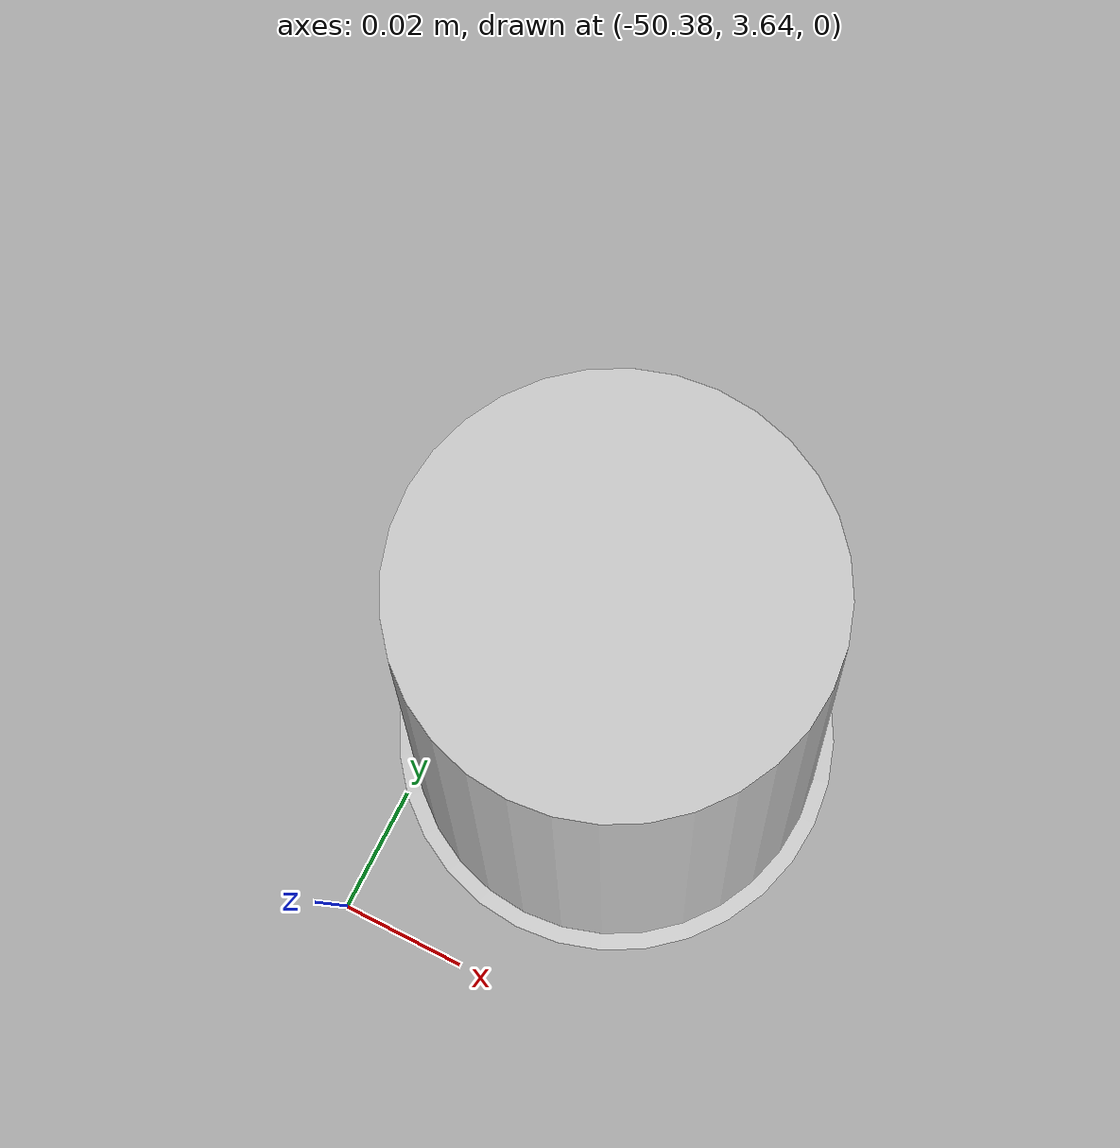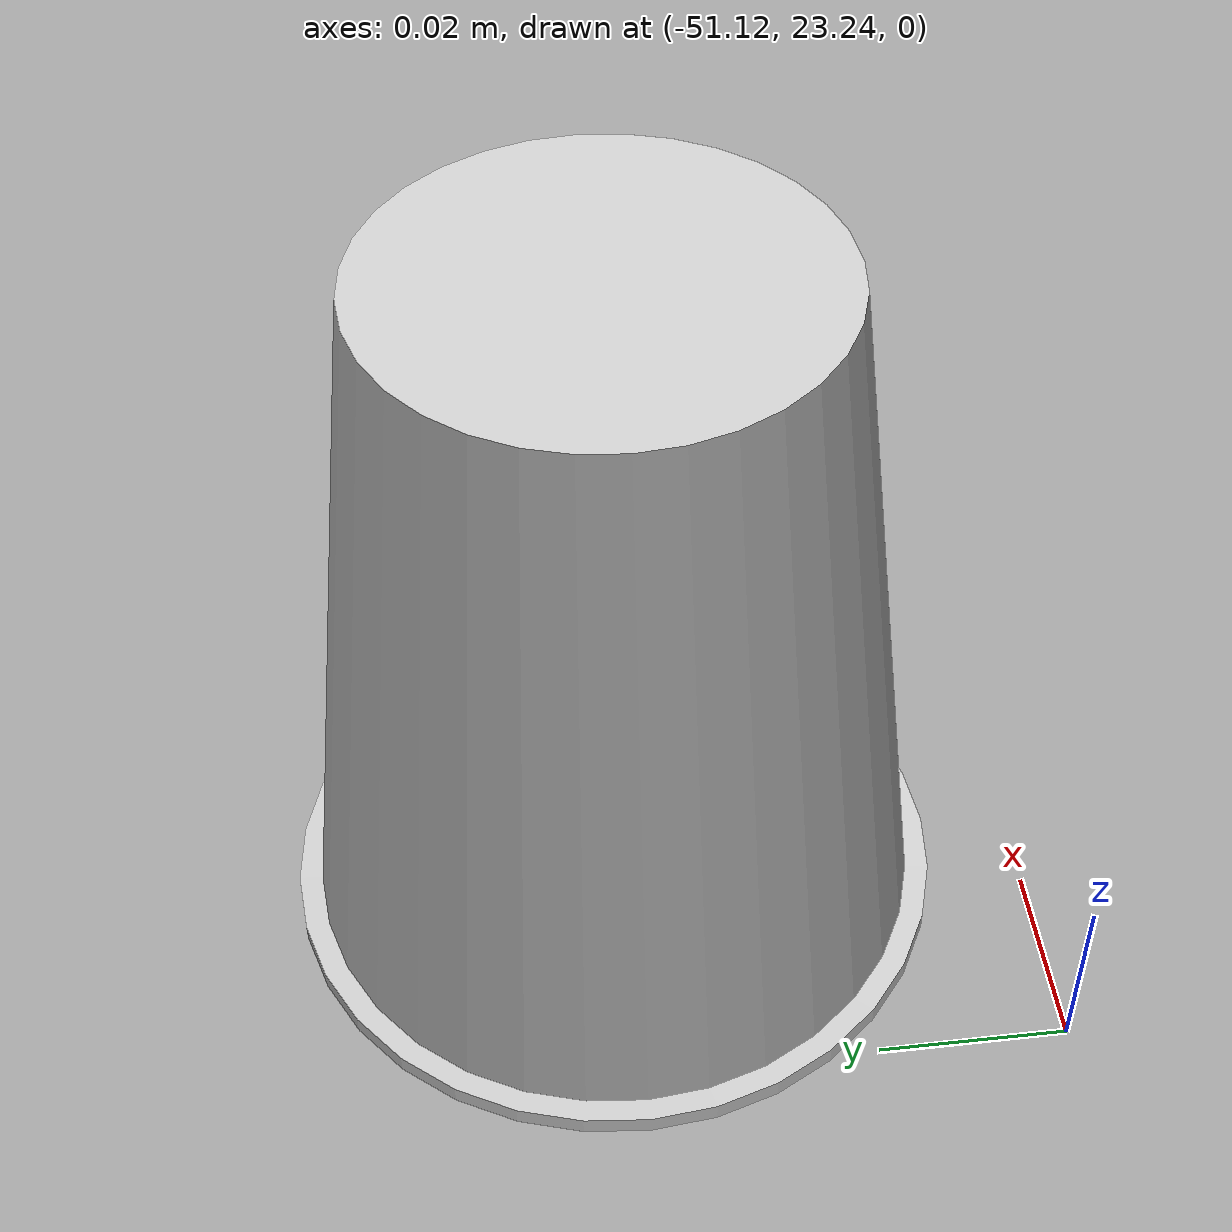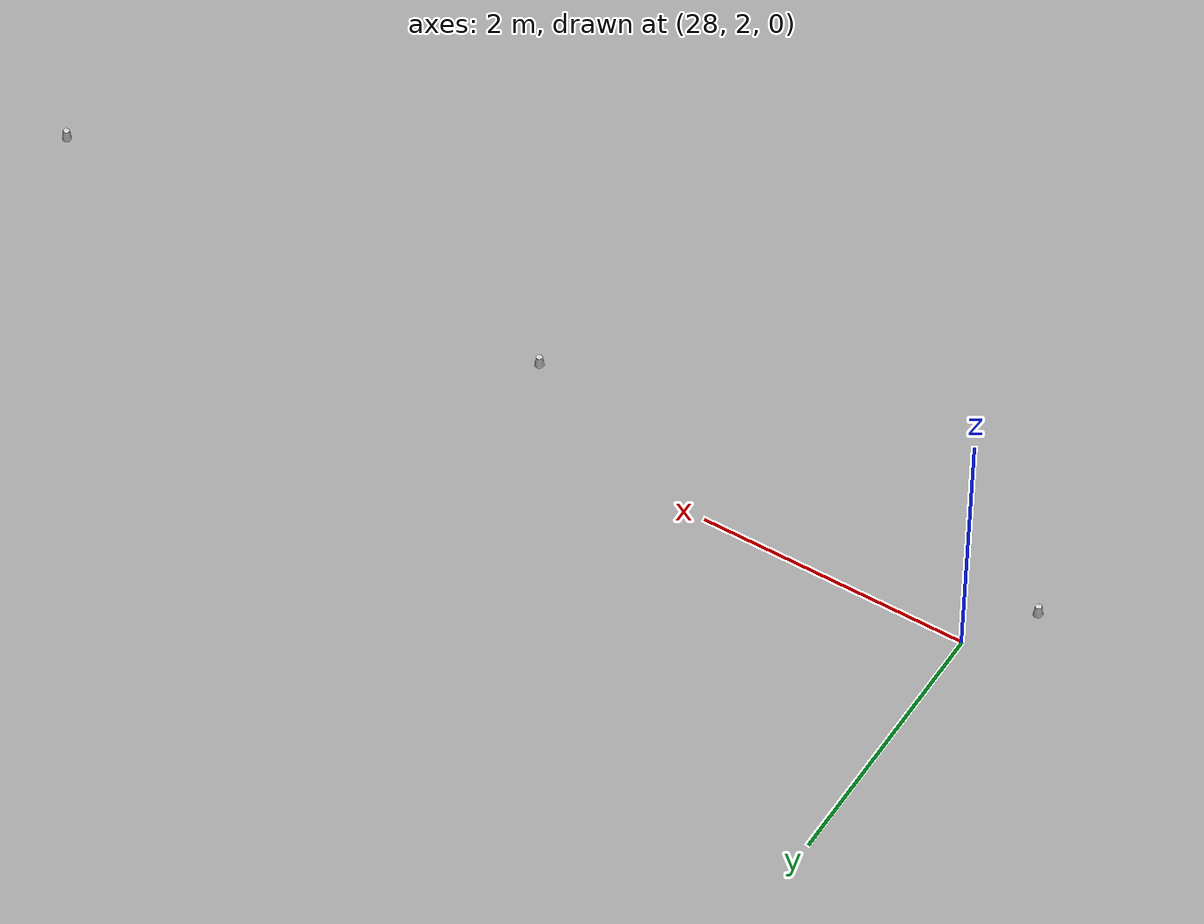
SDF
<?xml version='1.0' encoding='UTF-8'?>
<sdf version="1.4">
  <model name="some track">
    <include>
      <uri>model://cone_blue</uri>
      <pose>4.025001619059125 1.4495638896469603 0 0 0 0</pose>
      <name>cone_left</name>
    </include>
    <include>
      <uri>model://cone_blue</uri>
      <pose>7.926311842754232 1.4088790365632846 0 0 0 0</pose>
      <name>cone_left</name>
    </include>
    <include>
      <uri>model://cone_blue</uri>
      <pose>11.86358853441134 1.4129666732974584 0 0 0 0</pose>
      <name>cone_left</name>
    </include>
    <include>
      <uri>model://cone_blue</uri>
      <pose>15.82793211768886 1.3972811239509755 0 0 0 0</pose>
      <name>cone_left</name>
    </include>
    <include>
      <uri>model://cone_blue</uri>
      <pose>19.762563842211538 1.4337943082635864 0 0 0 0</pose>
      <name>cone_left</name>
    </include>
    <include>
      <uri>model://cone_blue</uri>
      <pose>23.691594653873786 1.53407290928144 0 0 0 0</pose>
      <name>cone_left</name>
    </include>
    <include>
      <uri>model://cone_blue</uri>
      <pose>27.694051334911755 1.516318049852377 0 0 0 0</pose>
      <name>cone_left</name>
    </include>
    <include>
      <uri>model://cone_blue</uri>
      <pose>31.682404955241086 1.4194874554722225 0 0 0 0</pose>
      <name>cone_left</name>
    </include>
    <include>
      <uri>model://cone_blue</uri>
      <pose>35.61386858139267 1.3997979271088012 0 0 0 0</pose>
      <name>cone_left</name>
    </include>
    <include>
      <uri>model://cone_blue</uri>
      <pose>39.54965122961442 1.4113995927368244 0 0 0 0</pose>
      <name>cone_left</name>
    </include>
    <include>
      <uri>model://cone_blue</uri>
      <pose>43.49866077985243 1.3930160429730094 0 0 0 0</pose>
      <name>cone_left</name>
    </include>
    <include>
      <uri>model://cone_blue</uri>
      <pose>47.49148600533465 1.4314825905967623 0 0 0 0</pose>
      <name>cone_left</name>
    </include>
    <include>
      <uri>model://cone_blue</uri>
      <pose>51.64872960556281 0.5899586095310878 0 0 0 0</pose>
      <name>cone_left</name>
    </include>
    <include>
      <uri>model://cone_blue</uri>
      <pose>55.4416528640132 -2.2681919828193657 0 0 0 0</pose>
      <name>cone_left</name>
    </include>
    <include>
      <uri>model://cone_blue</uri>
      <pose>58.267345282961635 -5.434567974663204 0 0 0 0</pose>
      <name>cone_left</name>
    </include>
    <include>
      <uri>model://cone_blue</uri>
      <pose>61.12488207433795 -7.63855717183587 0 0 0 0</pose>
      <name>cone_left</name>
    </include>
    <include>
      <uri>model://cone_blue</uri>
      <pose>64.44749438924498 -8.77602118293903 0 0 0 0</pose>
      <name>cone_left</name>
    </include>
    <include>
      <uri>model://cone_blue</uri>
      <pose>68.02359545686487 -9.06934272425539 0 0 0 0</pose>
      <name>cone_left</name>
    </include>
    <include>
      <uri>model://cone_blue</uri>
      <pose>71.562283852897 -8.501440172714108 0 0 0 0</pose>
      <name>cone_left</name>
    </include>
    <include>
      <uri>model://cone_blue</uri>
      <pose>74.93576985087233 -7.095664306620222 0 0 0 0</pose>
      <name>cone_left</name>
    </include>
    <include>
      <uri>model://cone_blue</uri>
      <pose>77.86492648881331 -4.935289614565225 0 0 0 0</pose>
      <name>cone_left</name>
    </include>
    <include>
      <uri>model://cone_blue</uri>
      <pose>79.98371922719107 -2.1672260585986103 0 0 0 0</pose>
      <name>cone_left</name>
    </include>
    <include>
      <uri>model://cone_blue</uri>
      <pose>81.26815281895269 1.0872792658363648 0 0 0 0</pose>
      <name>cone_left</name>
    </include>
    <include>
      <uri>model://cone_blue</uri>
      <pose>82.04301824877084 4.767992777251784 0 0 0 0</pose>
      <name>cone_left</name>
    </include>
    <include>
      <uri>model://cone_blue</uri>
      <pose>82.46469386008559 8.641003143906214 0 0 0 0</pose>
      <name>cone_left</name>
    </include>
    <include>
      <uri>model://cone_blue</uri>
      <pose>82.36326954894326 12.399924458233869 0 0 0 0</pose>
      <name>cone_left</name>
    </include>
    <include>
      <uri>model://cone_blue</uri>
      <pose>81.5344761241548 15.870924692240813 0 0 0 0</pose>
      <name>cone_left</name>
    </include>
    <include>
      <uri>model://cone_blue</uri>
      <pose>79.92339471357973 19.07747693081596 0 0 0 0</pose>
      <name>cone_left</name>
    </include>
    <include>
      <uri>model://cone_blue</uri>
      <pose>77.66517542326619 22.13958395093933 0 0 0 0</pose>
      <name>cone_left</name>
    </include>
    <include>
      <uri>model://cone_blue</uri>
      <pose>74.9065573893315 24.301247424183654 0 0 0 0</pose>
      <name>cone_left</name>
    </include>
    <include>
      <uri>model://cone_blue</uri>
      <pose>71.77252483033763 25.012893683506164 0 0 0 0</pose>
      <name>cone_left</name>
    </include>
    <include>
      <uri>model://cone_blue</uri>
      <pose>67.90415868799542 25.28268266519014 0 0 0 0</pose>
      <name>cone_left</name>
    </include>
    <include>
      <uri>model://cone_blue</uri>
      <pose>64.0421504150181 25.055099655364653 0 0 0 0</pose>
      <name>cone_left</name>
    </include>
    <include>
      <uri>model://cone_blue</uri>
      <pose>61.499588072479774 23.481952654221498 0 0 0 0</pose>
      <name>cone_left</name>
    </include>
    <include>
      <uri>model://cone_blue</uri>
      <pose>59.20834827594299 20.844091513561793 0 0 0 0</pose>
      <name>cone_left</name>
    </include>
    <include>
      <uri>model://cone_blue</uri>
      <pose>55.1817659739293 18.431643938604992 0 0 0 0</pose>
      <name>cone_left</name>
    </include>
    <include>
      <uri>model://cone_blue</uri>
      <pose>46.452481899651005 20.280138909656355 0 0 0 0</pose>
      <name>cone_left</name>
    </include>
    <include>
      <uri>model://cone_blue</uri>
      <pose>43.86895359816015 24.41361540276025 0 0 0 0</pose>
      <name>cone_left</name>
    </include>
    <include>
      <uri>model://cone_blue</uri>
      <pose>42.301228245595595 28.856405787768313 0 0 0 0</pose>
      <name>cone_left</name>
    </include>
    <include>
      <uri>model://cone_blue</uri>
      <pose>41.174266590184295 32.92619601528896 0 0 0 0</pose>
      <name>cone_left</name>
    </include>
    <include>
      <uri>model://cone_blue</uri>
      <pose>40.29590729129074 36.79008573043638 0 0 0 0</pose>
      <name>cone_left</name>
    </include>
    <include>
      <uri>model://cone_blue</uri>
      <pose>39.58837235855325 40.63208061690743 0 0 0 0</pose>
      <name>cone_left</name>
    </include>
    <include>
      <uri>model://cone_blue</uri>
      <pose>38.95974570274041 44.543813743994555 0 0 0 0</pose>
      <name>cone_left</name>
    </include>
    <include>
      <uri>model://cone_blue</uri>
      <pose>38.23759727771908 48.41495544937574 0 0 0 0</pose>
      <name>cone_left</name>
    </include>
    <include>
      <uri>model://cone_blue</uri>
      <pose>37.23456782667979 52.1366691166129 0 0 0 0</pose>
      <name>cone_left</name>
    </include>
    <include>
      <uri>model://cone_blue</uri>
      <pose>35.851904602693 55.67628845784424 0 0 0 0</pose>
      <name>cone_left</name>
    </include>
    <include>
      <uri>model://cone_blue</uri>
      <pose>34.11568196706534 59.07023205158506 0 0 0 0</pose>
      <name>cone_left</name>
    </include>
    <include>
      <uri>model://cone_blue</uri>
      <pose>32.07308636237827 62.301927135285794 0 0 0 0</pose>
      <name>cone_left</name>
    </include>
    <include>
      <uri>model://cone_blue</uri>
      <pose>29.755132013345463 65.31887840082096 0 0 0 0</pose>
      <name>cone_left</name>
    </include>
    <include>
      <uri>model://cone_blue</uri>
      <pose>27.063051533699475 67.8842074360971 0 0 0 0</pose>
      <name>cone_left</name>
    </include>
    <include>
      <uri>model://cone_blue</uri>
      <pose>23.82756644329412 69.7695418526196 0 0 0 0</pose>
      <name>cone_left</name>
    </include>
    <include>
      <uri>model://cone_blue</uri>
      <pose>20.430399966067867 70.33553499854962 0 0 0 0</pose>
      <name>cone_left</name>
    </include>
    <include>
      <uri>model://cone_blue</uri>
      <pose>17.7566056376754 68.95178509371054 0 0 0 0</pose>
      <name>cone_left</name>
    </include>
    <include>
      <uri>model://cone_blue</uri>
      <pose>15.607240555749616 66.37889088163851 0 0 0 0</pose>
      <name>cone_left</name>
    </include>
    <include>
      <uri>model://cone_blue</uri>
      <pose>13.869124124388255 63.23823052936165 0 0 0 0</pose>
      <name>cone_left</name>
    </include>
    <include>
      <uri>model://cone_blue</uri>
      <pose>11.94506635890371 59.80687698963569 0 0 0 0</pose>
      <name>cone_left</name>
    </include>
    <include>
      <uri>model://cone_blue</uri>
      <pose>9.715723882996144 56.40270672476777 0 0 0 0</pose>
      <name>cone_left</name>
    </include>
    <include>
      <uri>model://cone_blue</uri>
      <pose>7.4857762831826395 53.099697966050755 0 0 0 0</pose>
      <name>cone_left</name>
    </include>
    <include>
      <uri>model://cone_blue</uri>
      <pose>5.4561592004723085 49.78534327995725 0 0 0 0</pose>
      <name>cone_left</name>
    </include>
    <include>
      <uri>model://cone_blue</uri>
      <pose>3.460388958951469 46.40489758072859 0 0 0 0</pose>
      <name>cone_left</name>
    </include>
    <include>
      <uri>model://cone_blue</uri>
      <pose>1.0365247285145338 43.07522095380259 0 0 0 0</pose>
      <name>cone_left</name>
    </include>
    <include>
      <uri>model://cone_blue</uri>
      <pose>-2.233308706105093 40.09039087741975 0 0 0 0</pose>
      <name>cone_left</name>
    </include>
    <include>
      <uri>model://cone_blue</uri>
      <pose>-6.319210557229533 38.11230056021793 0 0 0 0</pose>
      <name>cone_left</name>
    </include>
    <include>
      <uri>model://cone_blue</uri>
      <pose>-15.13644519108829 39.41706895163946 0 0 0 0</pose>
      <name>cone_left</name>
    </include>
    <include>
      <uri>model://cone_blue</uri>
      <pose>-18.745542803036106 39.66828007160067 0 0 0 0</pose>
      <name>cone_left</name>
    </include>
    <include>
      <uri>model://cone_blue</uri>
      <pose>-22.027816527526603 38.472557449395644 0 0 0 0</pose>
      <name>cone_left</name>
    </include>
    <include>
      <uri>model://cone_blue</uri>
      <pose>-24.79707256051207 36.2786145193039 0 0 0 0</pose>
      <name>cone_left</name>
    </include>
    <include>
      <uri>model://cone_blue</uri>
      <pose>-26.68954036030192 33.465472163383566 0 0 0 0</pose>
      <name>cone_left</name>
    </include>
    <include>
      <uri>model://cone_blue</uri>
      <pose>-28.48889201709426 30.1176162375503 0 0 0 0</pose>
      <name>cone_left</name>
    </include>
    <include>
      <uri>model://cone_blue</uri>
      <pose>-30.96552962706943 26.529200003878653 0 0 0 0</pose>
      <name>cone_left</name>
    </include>
    <include>
      <uri>model://cone_blue</uri>
      <pose>-34.33669257845149 23.56947254100896 0 0 0 0</pose>
      <name>cone_left</name>
    </include>
    <include>
      <uri>model://cone_blue</uri>
      <pose>-43.22658591531799 22.563398720483328 0 0 0 0</pose>
      <name>cone_left</name>
    </include>
    <include>
      <uri>model://cone_blue</uri>
      <pose>-47.165833085134906 22.955927094587466 0 0 0 0</pose>
      <name>cone_left</name>
    </include>
    <include>
      <uri>model://cone_blue</uri>
      <pose>-51.091385541997994 23.284797739509685 0 0 0 0</pose>
      <name>cone_left</name>
    </include>
    <include>
      <uri>model://cone_blue</uri>
      <pose>-54.81190212133145 23.044171293857058 0 0 0 0</pose>
      <name>cone_left</name>
    </include>
    <include>
      <uri>model://cone_blue</uri>
      <pose>-57.7401461026098 21.331952846858393 0 0 0 0</pose>
      <name>cone_left</name>
    </include>
    <include>
      <uri>model://cone_blue</uri>
      <pose>-59.07980394945353 18.57225192049215 0 0 0 0</pose>
      <name>cone_left</name>
    </include>
    <include>
      <uri>model://cone_blue</uri>
      <pose>-58.98669034919164 15.340387794555786 0 0 0 0</pose>
      <name>cone_left</name>
    </include>
    <include>
      <uri>model://cone_blue</uri>
      <pose>-58.72156779046284 11.560688432924792 0 0 0 0</pose>
      <name>cone_left</name>
    </include>
    <include>
      <uri>model://cone_blue</uri>
      <pose>-58.47205402676644 7.565892470878323 0 0 0 0</pose>
      <name>cone_left</name>
    </include>
    <include>
      <uri>model://cone_blue</uri>
      <pose>-56.694302468210665 4.9233936353273755 0 0 0 0</pose>
      <name>cone_left</name>
    </include>
    <include>
      <uri>model://cone_blue</uri>
      <pose>-53.8338948693817 3.9980224250830565 0 0 0 0</pose>
      <name>cone_left</name>
    </include>
    <include>
      <uri>model://cone_blue</uri>
      <pose>-50.35456503048456 3.6841521236749166 0 0 0 0</pose>
      <name>cone_left</name>
    </include>
    <include>
      <uri>model://cone_blue</uri>
      <pose>-46.43366989434389 3.2551617622624285 0 0 0 0</pose>
      <name>cone_left</name>
    </include>
    <include>
      <uri>model://cone_blue</uri>
      <pose>-42.394165146516606 2.40601858580313 0 0 0 0</pose>
      <name>cone_left</name>
    </include>
    <include>
      <uri>model://cone_blue</uri>
      <pose>-38.45160544343174 1.0548801762184785 0 0 0 0</pose>
      <name>cone_left</name>
    </include>
    <include>
      <uri>model://cone_blue</uri>
      <pose>-34.70517464028393 -0.4004282147975802 0 0 0 0</pose>
      <name>cone_left</name>
    </include>
    <include>
      <uri>model://cone_blue</uri>
      <pose>-31.092105190498508 -1.1865951310839367 0 0 0 0</pose>
      <name>cone_left</name>
    </include>
    <include>
      <uri>model://cone_blue</uri>
      <pose>-27.41057876012035 -1.2881729141251894 0 0 0 0</pose>
      <name>cone_left</name>
    </include>
    <include>
      <uri>model://cone_blue</uri>
      <pose>-23.67242264430966 -0.9286372387834763 0 0 0 0</pose>
      <name>cone_left</name>
    </include>
    <include>
      <uri>model://cone_blue</uri>
      <pose>-19.900960692725974 -0.2763048086469104 0 0 0 0</pose>
      <name>cone_left</name>
    </include>
    <include>
      <uri>model://cone_blue</uri>
      <pose>-16.049581608660024 0.4927888877196678 0 0 0 0</pose>
      <name>cone_left</name>
    </include>
    <include>
      <uri>model://cone_blue</uri>
      <pose>-12.082208891584973 1.1645592576666088 0 0 0 0</pose>
      <name>cone_left</name>
    </include>
    <include>
      <uri>model://cone_blue</uri>
      <pose>-7.983509929842368 1.4659600211346924 0 0 0 0</pose>
      <name>cone_left</name>
    </include>
    <include>
      <uri>model://cone_blue</uri>
      <pose>-3.8097707016470514 1.2227688655530564 0 0 0 0</pose>
      <name>cone_left</name>
    </include>
    <include>
      <uri>model://cone_blue</uri>
      <pose>52.087649567190574 17.533465964975267 0 0 0 0</pose>
      <name>cone_left</name>
    </include>
    <include>
      <uri>model://cone_blue</uri>
      <pose>48.83870247112711 18.066875189702106 0 0 0 0</pose>
      <name>cone_left</name>
    </include>
    <include>
      <uri>model://cone_blue</uri>
      <pose>-9.658513948413862 37.32906994640163 0 0 0 0</pose>
      <name>cone_left</name>
    </include>
    <include>
      <uri>model://cone_blue</uri>
      <pose>-12.465586711939224 38.28062003573226 0 0 0 0</pose>
      <name>cone_left</name>
    </include>
    <include>
      <uri>model://cone_blue</uri>
      <pose>-36.72927914472389 21.813057549557232 0 0 0 0</pose>
      <name>cone_left</name>
    </include>
    <include>
      <uri>model://cone_blue</uri>
      <pose>-39.80889533171042 21.813057549557232 0 0 0 0</pose>
      <name>cone_left</name>
    </include>
    <include>
      <uri>model://cone_orange_big</uri>
      <pose>-1.3 2.125 0 0 0 0</pose>
      <name>cone_orange_big</name>
    </include>
    <include>
      <uri>model://cone_orange_big</uri>
      <pose>-1.3 -2.125 0 0 0 0</pose>
      <name>cone_orange_big</name>
    </include>
    <include>
      <uri>model://cone_orange_big</uri>
      <pose>1.3 2.125 0 0 0 0</pose>
      <name>cone_orange_big</name>
    </include>
    <include>
      <uri>model://cone_orange_big</uri>
      <pose>1.3 -2.125 0 0 0 0</pose>
      <name>cone_orange_big</name>
    </include>
  </model>
</sdf>

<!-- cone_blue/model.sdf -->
<sdf version='1.4'>
  <model name="cone_blue">
    <link name="link">
    <collision name="collision"><geometry><box><size> 0.05 0.05 0.01</size>
             </box></geometry></collision>
      <visual name="visual">
        <geometry>
          <mesh>
            <uri>model://cup.dae</uri>
            <scale>1 1 1</scale>
          </mesh>
        </geometry>
        <material>
            <script>
              <uri>model://cone_blue/materials/scripts</uri>
              <uri>model://cone_blue/materials/textures</uri>
              <name>cone_blue/Image</name>
            </script>
        </material>
      </visual>
    </link>
  </model>
</sdf>

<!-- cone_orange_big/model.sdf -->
<sdf version='1.4'>
  <model name="cone_orange_big">
    <link name="link">
    <collision name="collision"><geometry><box><size> 0.05 0.05 0.01</size>
             </box></geometry></collision>
      <visual name="visual">
        <geometry>
          <mesh>
            <uri>model://cup.dae</uri>
            <scale>1 1 1</scale>
          </mesh>
        </geometry>
        <material>
            <script>
              <uri>model://cone_orange_big/materials/scripts</uri>
              <uri>model://cone_orange_big/materials/textures</uri>
              <name>cone_orange_big/Image</name>
            </script>
        </material>
      </visual>
    </link>
  </model>
</sdf>
